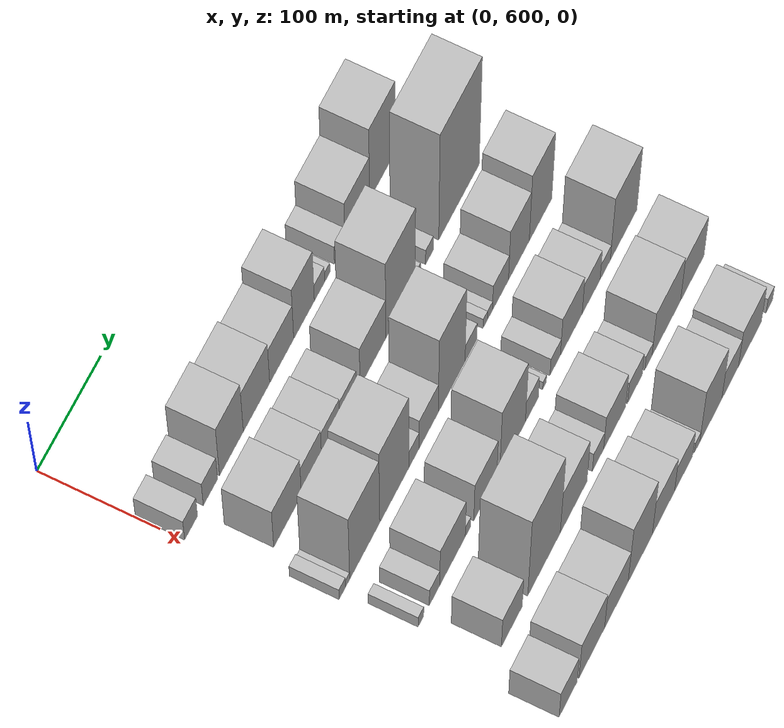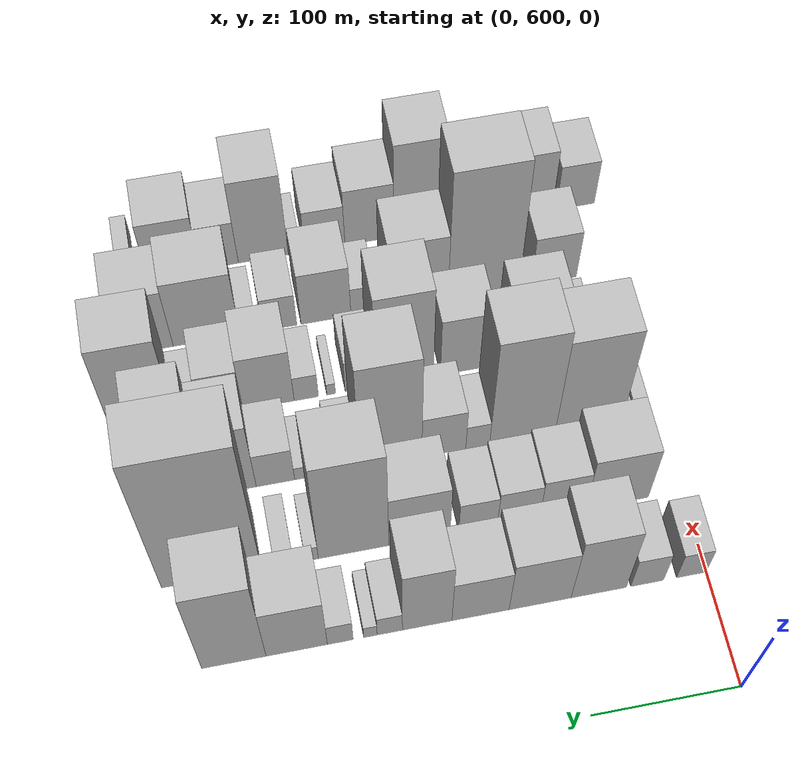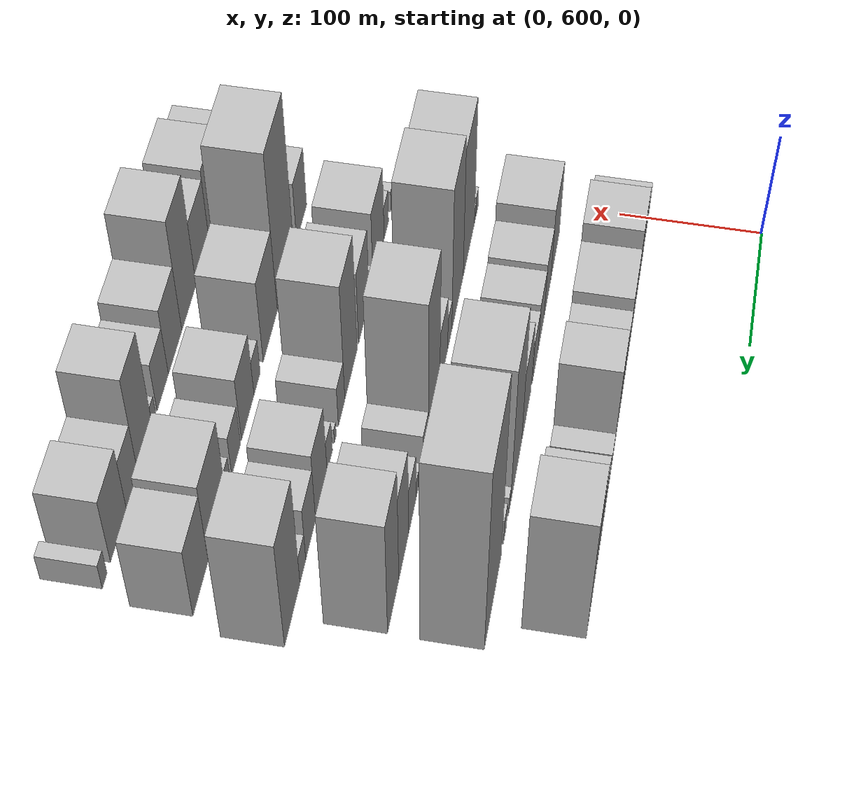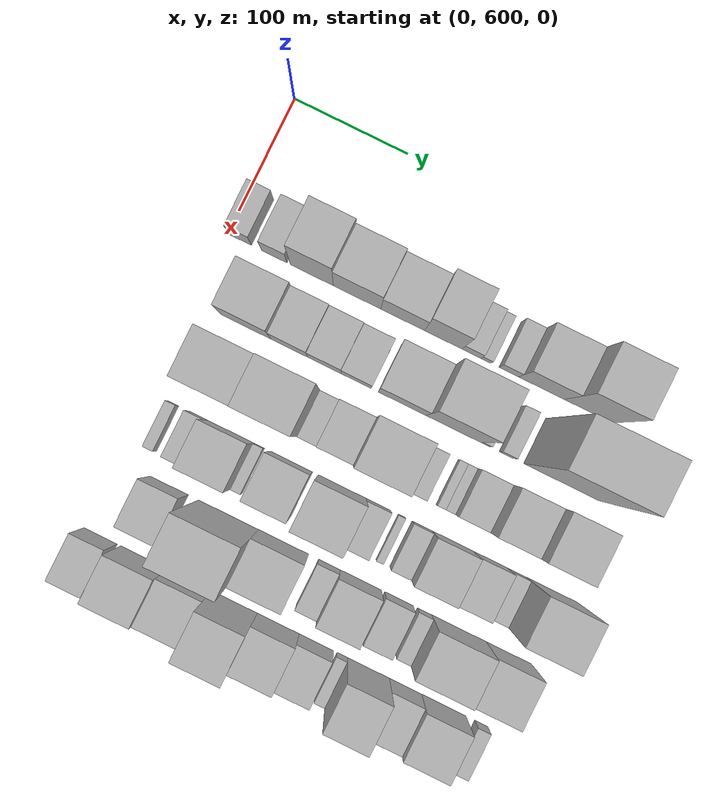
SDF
<sdf version="1.6">
 <world name="default">
  <model name="building_43">
   <static>1</static>
   <pose>100.0000 610.7776 0 0.000000 0.000000 0.000000</pose>
   <link name="link">
    <pose>0 0 19.50 0 0 0</pose>
    <collision name="collision"><geometry><box><size>40.0000 20.3813 39.0000</size></box></geometry></collision>
    <visual name="visual">
     <cast_shadows>0</cast_shadows>
     <geometry><box><size>40.0000 20.3813 39.0000</size></box></geometry>
     <material>
      <script>
       <uri>model://HANNAS_wall/materials/scripts</uri>
       <uri>model://HANNAS_wall/materials/textures</uri>
       <name>vrc/HANNAS_wall</name>
      </script>
     </material>
    </visual>
   </link>
  </model>
  <model name="building_44">
   <static>1</static>
   <pose>100.0000 641.2675 0 0.000000 0.000000 0.000000</pose>
   <link name="link">
    <pose>0 0 22.50 0 0 0</pose>
    <collision name="collision"><geometry><box><size>40.0000 22.5986 45.0000</size></box></geometry></collision>
    <visual name="visual">
     <cast_shadows>0</cast_shadows>
     <geometry><box><size>40.0000 22.5986 45.0000</size></box></geometry>
     <material>
      <script>
       <uri>model://HANNAS_wall/materials/scripts</uri>
       <uri>model://HANNAS_wall/materials/textures</uri>
       <name>vrc/HANNAS_wall</name>
      </script>
     </material>
    </visual>
   </link>
  </model>
  <model name="building_45">
   <static>1</static>
   <pose>100.0000 674.5001 0 0.000000 0.000000 0.000000</pose>
   <link name="link">
    <pose>0 0 48.00 0 0 0</pose>
    <collision name="collision"><geometry><box><size>40.0000 37.8667 96.0000</size></box></geometry></collision>
    <visual name="visual">
     <cast_shadows>0</cast_shadows>
     <geometry><box><size>40.0000 37.8667 96.0000</size></box></geometry>
     <material>
      <script>
       <uri>model://HANNAS_wall/materials/scripts</uri>
       <uri>model://HANNAS_wall/materials/textures</uri>
       <name>vrc/HANNAS_wall</name>
      </script>
     </material>
    </visual>
   </link>
  </model>
  <model name="building_46">
   <static>1</static>
   <pose>100.0000 714.5114 0 0.000000 0.000000 0.000000</pose>
   <link name="link">
    <pose>0 0 39.00 0 0 0</pose>
    <collision name="collision"><geometry><box><size>40.0000 42.1558 78.0000</size></box></geometry></collision>
    <visual name="visual">
     <cast_shadows>0</cast_shadows>
     <geometry><box><size>40.0000 42.1558 78.0000</size></box></geometry>
     <material>
      <script>
       <uri>model://HANNAS_wall/materials/scripts</uri>
       <uri>model://HANNAS_wall/materials/textures</uri>
       <name>vrc/HANNAS_wall</name>
      </script>
     </material>
    </visual>
   </link>
  </model>
  <model name="building_47">
   <static>1</static>
   <pose>100.0000 754.8918 0 0.000000 0.000000 0.000000</pose>
   <link name="link">
    <pose>0 0 33.00 0 0 0</pose>
    <collision name="collision"><geometry><box><size>40.0000 38.6050 66.0000</size></box></geometry></collision>
    <visual name="visual">
     <cast_shadows>0</cast_shadows>
     <geometry><box><size>40.0000 38.6050 66.0000</size></box></geometry>
     <material>
      <script>
       <uri>model://HANNAS_wall/materials/scripts</uri>
       <uri>model://HANNAS_wall/materials/textures</uri>
       <name>vrc/HANNAS_wall</name>
      </script>
     </material>
    </visual>
   </link>
  </model>
  <model name="building_48">
   <static>1</static>
   <pose>100.0000 790.8242 0 0.000000 0.000000 0.000000</pose>
   <link name="link">
    <pose>0 0 48.00 0 0 0</pose>
    <collision name="collision"><geometry><box><size>40.0000 33.2598 96.0000</size></box></geometry></collision>
    <visual name="visual">
     <cast_shadows>0</cast_shadows>
     <geometry><box><size>40.0000 33.2598 96.0000</size></box></geometry>
     <material>
      <script>
       <uri>model://HANNAS_wall/materials/scripts</uri>
       <uri>model://HANNAS_wall/materials/textures</uri>
       <name>vrc/HANNAS_wall</name>
      </script>
     </material>
    </visual>
   </link>
  </model>
  <model name="building_49">
   <static>1</static>
   <pose>100.0000 815.8754 0 0.000000 0.000000 0.000000</pose>
   <link name="link">
    <pose>0 0 15.00 0 0 0</pose>
    <collision name="collision"><geometry><box><size>40.0000 16.8427 30.0000</size></box></geometry></collision>
    <visual name="visual">
     <cast_shadows>0</cast_shadows>
     <geometry><box><size>40.0000 16.8427 30.0000</size></box></geometry>
     <material>
      <script>
       <uri>model://HANNAS_wall/materials/scripts</uri>
       <uri>model://HANNAS_wall/materials/textures</uri>
       <name>vrc/HANNAS_wall</name>
      </script>
     </material>
    </visual>
   </link>
  </model>
  <model name="building_50">
   <static>1</static>
   <pose>100.0000 828.7711 0 0.000000 0.000000 0.000000</pose>
   <link name="link">
    <pose>0 0 9.00 0 0 0</pose>
    <collision name="collision"><geometry><box><size>40.0000 8.9487 18.0000</size></box></geometry></collision>
    <visual name="visual">
     <cast_shadows>0</cast_shadows>
     <geometry><box><size>40.0000 8.9487 18.0000</size></box></geometry>
     <material>
      <script>
       <uri>model://HANNAS_wall/materials/scripts</uri>
       <uri>model://HANNAS_wall/materials/textures</uri>
       <name>vrc/HANNAS_wall</name>
      </script>
     </material>
    </visual>
   </link>
  </model>
  <model name="building_51">
   <static>1</static>
   <pose>100.0000 848.8117 0 0.000000 0.000000 0.000000</pose>
   <link name="link">
    <pose>0 0 16.50 0 0 0</pose>
    <collision name="collision"><geometry><box><size>40.0000 17.1325 33.0000</size></box></geometry></collision>
    <visual name="visual">
     <cast_shadows>0</cast_shadows>
     <geometry><box><size>40.0000 17.1325 33.0000</size></box></geometry>
     <material>
      <script>
       <uri>model://HANNAS_wall/materials/scripts</uri>
       <uri>model://HANNAS_wall/materials/textures</uri>
       <name>vrc/HANNAS_wall</name>
      </script>
     </material>
    </visual>
   </link>
  </model>
  <model name="building_52">
   <static>1</static>
   <pose>100.0000 877.6460 0 0.000000 0.000000 0.000000</pose>
   <link name="link">
    <pose>0 0 39.00 0 0 0</pose>
    <collision name="collision"><geometry><box><size>40.0000 40.5361 78.0000</size></box></geometry></collision>
    <visual name="visual">
     <cast_shadows>0</cast_shadows>
     <geometry><box><size>40.0000 40.5361 78.0000</size></box></geometry>
     <material>
      <script>
       <uri>model://HANNAS_wall/materials/scripts</uri>
       <uri>model://HANNAS_wall/materials/textures</uri>
       <name>vrc/HANNAS_wall</name>
      </script>
     </material>
    </visual>
   </link>
  </model>
  <model name="building_53">
   <static>1</static>
   <pose>100.0000 919.0583 0 0.000000 0.000000 0.000000</pose>
   <link name="link">
    <pose>0 0 64.50 0 0 0</pose>
    <collision name="collision"><geometry><box><size>40.0000 42.2884 129.0000</size></box></geometry></collision>
    <visual name="visual">
     <cast_shadows>0</cast_shadows>
     <geometry><box><size>40.0000 42.2884 129.0000</size></box></geometry>
     <material>
      <script>
       <uri>model://HANNAS_wall/materials/scripts</uri>
       <uri>model://HANNAS_wall/materials/textures</uri>
       <name>vrc/HANNAS_wall</name>
      </script>
     </material>
    </visual>
   </link>
  </model>
  <model name="building_103">
   <static>1</static>
   <pose>160.0000 646.2198 0 0.000000 0.000000 0.000000</pose>
   <link name="link">
    <pose>0 0 37.50 0 0 0</pose>
    <collision name="collision"><geometry><box><size>40.0000 44.0148 75.0000</size></box></geometry></collision>
    <visual name="visual">
     <cast_shadows>0</cast_shadows>
     <geometry><box><size>40.0000 44.0148 75.0000</size></box></geometry>
     <material>
      <script>
       <uri>model://HANNAS_wall/materials/scripts</uri>
       <uri>model://HANNAS_wall/materials/textures</uri>
       <name>vrc/HANNAS_wall</name>
      </script>
     </material>
    </visual>
   </link>
  </model>
  <model name="building_104">
   <static>1</static>
   <pose>160.0000 684.3957 0 0.000000 0.000000 0.000000</pose>
   <link name="link">
    <pose>0 0 28.50 0 0 0</pose>
    <collision name="collision"><geometry><box><size>40.0000 32.3370 57.0000</size></box></geometry></collision>
    <visual name="visual">
     <cast_shadows>0</cast_shadows>
     <geometry><box><size>40.0000 32.3370 57.0000</size></box></geometry>
     <material>
      <script>
       <uri>model://HANNAS_wall/materials/scripts</uri>
       <uri>model://HANNAS_wall/materials/textures</uri>
       <name>vrc/HANNAS_wall</name>
      </script>
     </material>
    </visual>
   </link>
  </model>
  <model name="building_105">
   <static>1</static>
   <pose>160.0000 715.2752 0 0.000000 0.000000 0.000000</pose>
   <link name="link">
    <pose>0 0 25.50 0 0 0</pose>
    <collision name="collision"><geometry><box><size>40.0000 29.4220 51.0000</size></box></geometry></collision>
    <visual name="visual">
     <cast_shadows>0</cast_shadows>
     <geometry><box><size>40.0000 29.4220 51.0000</size></box></geometry>
     <material>
      <script>
       <uri>model://HANNAS_wall/materials/scripts</uri>
       <uri>model://HANNAS_wall/materials/textures</uri>
       <name>vrc/HANNAS_wall</name>
      </script>
     </material>
    </visual>
   </link>
  </model>
  <model name="building_106">
   <static>1</static>
   <pose>160.0000 743.3657 0 0.000000 0.000000 0.000000</pose>
   <link name="link">
    <pose>0 0 22.50 0 0 0</pose>
    <collision name="collision"><geometry><box><size>40.0000 26.7590 45.0000</size></box></geometry></collision>
    <visual name="visual">
     <cast_shadows>0</cast_shadows>
     <geometry><box><size>40.0000 26.7590 45.0000</size></box></geometry>
     <material>
      <script>
       <uri>model://HANNAS_wall/materials/scripts</uri>
       <uri>model://HANNAS_wall/materials/textures</uri>
       <name>vrc/HANNAS_wall</name>
      </script>
     </material>
    </visual>
   </link>
  </model>
  <model name="building_107">
   <static>1</static>
   <pose>160.0000 783.7602 0 0.000000 0.000000 0.000000</pose>
   <link name="link">
    <pose>0 0 37.50 0 0 0</pose>
    <collision name="collision"><geometry><box><size>40.0000 42.0301 75.0000</size></box></geometry></collision>
    <visual name="visual">
     <cast_shadows>0</cast_shadows>
     <geometry><box><size>40.0000 42.0301 75.0000</size></box></geometry>
     <material>
      <script>
       <uri>model://HANNAS_wall/materials/scripts</uri>
       <uri>model://HANNAS_wall/materials/textures</uri>
       <name>vrc/HANNAS_wall</name>
      </script>
     </material>
    </visual>
   </link>
  </model>
  <model name="building_108">
   <static>1</static>
   <pose>160.0000 828.8550 0 0.000000 0.000000 0.000000</pose>
   <link name="link">
    <pose>0 0 72.00 0 0 0</pose>
    <collision name="collision"><geometry><box><size>40.0000 48.1595 144.0000</size></box></geometry></collision>
    <visual name="visual">
     <cast_shadows>0</cast_shadows>
     <geometry><box><size>40.0000 48.1595 144.0000</size></box></geometry>
     <material>
      <script>
       <uri>model://HANNAS_wall/materials/scripts</uri>
       <uri>model://HANNAS_wall/materials/textures</uri>
       <name>vrc/HANNAS_wall</name>
      </script>
     </material>
    </visual>
   </link>
  </model>
  <model name="building_109">
   <static>1</static>
   <pose>160.0000 857.3793 0 0.000000 0.000000 0.000000</pose>
   <link name="link">
    <pose>0 0 10.50 0 0 0</pose>
    <collision name="collision"><geometry><box><size>40.0000 8.8892 21.0000</size></box></geometry></collision>
    <visual name="visual">
     <cast_shadows>0</cast_shadows>
     <geometry><box><size>40.0000 8.8892 21.0000</size></box></geometry>
     <material>
      <script>
       <uri>model://HANNAS_wall/materials/scripts</uri>
       <uri>model://HANNAS_wall/materials/textures</uri>
       <name>vrc/HANNAS_wall</name>
      </script>
     </material>
    </visual>
   </link>
  </model>
  <model name="building_110">
   <static>1</static>
   <pose>160.0000 876.1584 0 0.000000 0.000000 0.000000</pose>
   <link name="link">
    <pose>0 0 13.50 0 0 0</pose>
    <collision name="collision"><geometry><box><size>40.0000 12.6690 27.0000</size></box></geometry></collision>
    <visual name="visual">
     <cast_shadows>0</cast_shadows>
     <geometry><box><size>40.0000 12.6690 27.0000</size></box></geometry>
     <material>
      <script>
       <uri>model://HANNAS_wall/materials/scripts</uri>
       <uri>model://HANNAS_wall/materials/textures</uri>
       <name>vrc/HANNAS_wall</name>
      </script>
     </material>
    </visual>
   </link>
  </model>
  <model name="building_111">
   <static>1</static>
   <pose>160.0000 925.1419 0 0.000000 0.000000 0.000000</pose>
   <link name="link">
    <pose>0 0 97.50 0 0 0</pose>
    <collision name="collision"><geometry><box><size>40.0000 67.2980 195.0000</size></box></geometry></collision>
    <visual name="visual">
     <cast_shadows>0</cast_shadows>
     <geometry><box><size>40.0000 67.2980 195.0000</size></box></geometry>
     <material>
      <script>
       <uri>model://HANNAS_wall/materials/scripts</uri>
       <uri>model://HANNAS_wall/materials/textures</uri>
       <name>vrc/HANNAS_wall</name>
      </script>
     </material>
    </visual>
   </link>
  </model>
  <model name="building_155">
   <static>1</static>
   <pose>220.0000 615.0858 0 0.000000 0.000000 0.000000</pose>
   <link name="link">
    <pose>0 0 10.50 0 0 0</pose>
    <collision name="collision"><geometry><box><size>40.0000 10.4318 21.0000</size></box></geometry></collision>
    <visual name="visual">
     <cast_shadows>0</cast_shadows>
     <geometry><box><size>40.0000 10.4318 21.0000</size></box></geometry>
     <material>
      <script>
       <uri>model://HANNAS_wall/materials/scripts</uri>
       <uri>model://HANNAS_wall/materials/textures</uri>
       <name>vrc/HANNAS_wall</name>
      </script>
     </material>
    </visual>
   </link>
  </model>
  <model name="building_156">
   <static>1</static>
   <pose>220.0000 623.5421 0 0.000000 0.000000 0.000000</pose>
   <link name="link">
    <pose>0 0 7.50 0 0 0</pose>
    <collision name="collision"><geometry><box><size>40.0000 6.4809 15.0000</size></box></geometry></collision>
    <visual name="visual">
     <cast_shadows>0</cast_shadows>
     <geometry><box><size>40.0000 6.4809 15.0000</size></box></geometry>
     <material>
      <script>
       <uri>model://HANNAS_wall/materials/scripts</uri>
       <uri>model://HANNAS_wall/materials/textures</uri>
       <name>vrc/HANNAS_wall</name>
      </script>
     </material>
    </visual>
   </link>
  </model>
  <model name="building_157">
   <static>1</static>
   <pose>220.0000 650.8778 0 0.000000 0.000000 0.000000</pose>
   <link name="link">
    <pose>0 0 64.50 0 0 0</pose>
    <collision name="collision"><geometry><box><size>40.0000 48.1904 129.0000</size></box></geometry></collision>
    <visual name="visual">
     <cast_shadows>0</cast_shadows>
     <geometry><box><size>40.0000 48.1904 129.0000</size></box></geometry>
     <material>
      <script>
       <uri>model://HANNAS_wall/materials/scripts</uri>
       <uri>model://HANNAS_wall/materials/textures</uri>
       <name>vrc/HANNAS_wall</name>
      </script>
     </material>
    </visual>
   </link>
  </model>
  <model name="building_158">
   <static>1</static>
   <pose>220.0000 698.4132 0 0.000000 0.000000 0.000000</pose>
   <link name="link">
    <pose>0 0 72.00 0 0 0</pose>
    <collision name="collision"><geometry><box><size>40.0000 46.8804 144.0000</size></box></geometry></collision>
    <visual name="visual">
     <cast_shadows>0</cast_shadows>
     <geometry><box><size>40.0000 46.8804 144.0000</size></box></geometry>
     <material>
      <script>
       <uri>model://HANNAS_wall/materials/scripts</uri>
       <uri>model://HANNAS_wall/materials/textures</uri>
       <name>vrc/HANNAS_wall</name>
      </script>
     </material>
    </visual>
   </link>
  </model>
  <model name="building_159">
   <static>1</static>
   <pose>220.0000 730.3492 0 0.000000 0.000000 0.000000</pose>
   <link name="link">
    <pose>0 0 16.50 0 0 0</pose>
    <collision name="collision"><geometry><box><size>40.0000 16.9916 33.0000</size></box></geometry></collision>
    <visual name="visual">
     <cast_shadows>0</cast_shadows>
     <geometry><box><size>40.0000 16.9916 33.0000</size></box></geometry>
     <material>
      <script>
       <uri>model://HANNAS_wall/materials/scripts</uri>
       <uri>model://HANNAS_wall/materials/textures</uri>
       <name>vrc/HANNAS_wall</name>
      </script>
     </material>
    </visual>
   </link>
  </model>
  <model name="building_160">
   <static>1</static>
   <pose>220.0000 754.4085 0 0.000000 0.000000 0.000000</pose>
   <link name="link">
    <pose>0 0 28.50 0 0 0</pose>
    <collision name="collision"><geometry><box><size>40.0000 31.1271 57.0000</size></box></geometry></collision>
    <visual name="visual">
     <cast_shadows>0</cast_shadows>
     <geometry><box><size>40.0000 31.1271 57.0000</size></box></geometry>
     <material>
      <script>
       <uri>model://HANNAS_wall/materials/scripts</uri>
       <uri>model://HANNAS_wall/materials/textures</uri>
       <name>vrc/HANNAS_wall</name>
      </script>
     </material>
    </visual>
   </link>
  </model>
  <model name="building_161">
   <static>1</static>
   <pose>220.0000 791.8838 0 0.000000 0.000000 0.000000</pose>
   <link name="link">
    <pose>0 0 72.00 0 0 0</pose>
    <collision name="collision"><geometry><box><size>40.0000 43.8234 144.0000</size></box></geometry></collision>
    <visual name="visual">
     <cast_shadows>0</cast_shadows>
     <geometry><box><size>40.0000 43.8234 144.0000</size></box></geometry>
     <material>
      <script>
       <uri>model://HANNAS_wall/materials/scripts</uri>
       <uri>model://HANNAS_wall/materials/textures</uri>
       <name>vrc/HANNAS_wall</name>
      </script>
     </material>
    </visual>
   </link>
  </model>
  <model name="building_162">
   <static>1</static>
   <pose>220.0000 823.6153 0 0.000000 0.000000 0.000000</pose>
   <link name="link">
    <pose>0 0 16.50 0 0 0</pose>
    <collision name="collision"><geometry><box><size>40.0000 19.6396 33.0000</size></box></geometry></collision>
    <visual name="visual">
     <cast_shadows>0</cast_shadows>
     <geometry><box><size>40.0000 19.6396 33.0000</size></box></geometry>
     <material>
      <script>
       <uri>model://HANNAS_wall/materials/scripts</uri>
       <uri>model://HANNAS_wall/materials/textures</uri>
       <name>vrc/HANNAS_wall</name>
      </script>
     </material>
    </visual>
   </link>
  </model>
  <model name="building_163">
   <static>1</static>
   <pose>220.0000 847.0999 0 0.000000 0.000000 0.000000</pose>
   <link name="link">
    <pose>0 0 9.00 0 0 0</pose>
    <collision name="collision"><geometry><box><size>40.0000 7.3296 18.0000</size></box></geometry></collision>
    <visual name="visual">
     <cast_shadows>0</cast_shadows>
     <geometry><box><size>40.0000 7.3296 18.0000</size></box></geometry>
     <material>
      <script>
       <uri>model://HANNAS_wall/materials/scripts</uri>
       <uri>model://HANNAS_wall/materials/textures</uri>
       <name>vrc/HANNAS_wall</name>
      </script>
     </material>
    </visual>
   </link>
  </model>
  <model name="building_164">
   <static>1</static>
   <pose>220.0000 854.9208 0 0.000000 0.000000 0.000000</pose>
   <link name="link">
    <pose>0 0 9.00 0 0 0</pose>
    <collision name="collision"><geometry><box><size>40.0000 8.3123 18.0000</size></box></geometry></collision>
    <visual name="visual">
     <cast_shadows>0</cast_shadows>
     <geometry><box><size>40.0000 8.3123 18.0000</size></box></geometry>
     <material>
      <script>
       <uri>model://HANNAS_wall/materials/scripts</uri>
       <uri>model://HANNAS_wall/materials/textures</uri>
       <name>vrc/HANNAS_wall</name>
      </script>
     </material>
    </visual>
   </link>
  </model>
  <model name="building_165">
   <static>1</static>
   <pose>220.0000 872.4205 0 0.000000 0.000000 0.000000</pose>
   <link name="link">
    <pose>0 0 24.00 0 0 0</pose>
    <collision name="collision"><geometry><box><size>40.0000 26.6870 48.0000</size></box></geometry></collision>
    <visual name="visual">
     <cast_shadows>0</cast_shadows>
     <geometry><box><size>40.0000 26.6870 48.0000</size></box></geometry>
     <material>
      <script>
       <uri>model://HANNAS_wall/materials/scripts</uri>
       <uri>model://HANNAS_wall/materials/textures</uri>
       <name>vrc/HANNAS_wall</name>
      </script>
     </material>
    </visual>
   </link>
  </model>
  <model name="building_166">
   <static>1</static>
   <pose>220.0000 903.0602 0 0.000000 0.000000 0.000000</pose>
   <link name="link">
    <pose>0 0 46.50 0 0 0</pose>
    <collision name="collision"><geometry><box><size>40.0000 34.5925 93.0000</size></box></geometry></collision>
    <visual name="visual">
     <cast_shadows>0</cast_shadows>
     <geometry><box><size>40.0000 34.5925 93.0000</size></box></geometry>
     <material>
      <script>
       <uri>model://HANNAS_wall/materials/scripts</uri>
       <uri>model://HANNAS_wall/materials/textures</uri>
       <name>vrc/HANNAS_wall</name>
      </script>
     </material>
    </visual>
   </link>
  </model>
  <model name="building_167">
   <static>1</static>
   <pose>220.0000 939.2736 0 0.000000 0.000000 0.000000</pose>
   <link name="link">
    <pose>0 0 61.50 0 0 0</pose>
    <collision name="collision"><geometry><box><size>40.0000 37.8342 123.0000</size></box></geometry></collision>
    <visual name="visual">
     <cast_shadows>0</cast_shadows>
     <geometry><box><size>40.0000 37.8342 123.0000</size></box></geometry>
     <material>
      <script>
       <uri>model://HANNAS_wall/materials/scripts</uri>
       <uri>model://HANNAS_wall/materials/textures</uri>
       <name>vrc/HANNAS_wall</name>
      </script>
     </material>
    </visual>
   </link>
  </model>
  <model name="building_212">
   <static>1</static>
   <pose>280.0000 621.1608 0 0.000000 0.000000 0.000000</pose>
   <link name="link">
    <pose>0 0 10.50 0 0 0</pose>
    <collision name="collision"><geometry><box><size>40.0000 9.0547 21.0000</size></box></geometry></collision>
    <visual name="visual">
     <cast_shadows>0</cast_shadows>
     <geometry><box><size>40.0000 9.0547 21.0000</size></box></geometry>
     <material>
      <script>
       <uri>model://HANNAS_wall/materials/scripts</uri>
       <uri>model://HANNAS_wall/materials/textures</uri>
       <name>vrc/HANNAS_wall</name>
      </script>
     </material>
    </visual>
   </link>
  </model>
  <model name="building_213">
   <static>1</static>
   <pose>280.0000 643.0673 0 0.000000 0.000000 0.000000</pose>
   <link name="link">
    <pose>0 0 16.50 0 0 0</pose>
    <collision name="collision"><geometry><box><size>40.0000 16.7583 33.0000</size></box></geometry></collision>
    <visual name="visual">
     <cast_shadows>0</cast_shadows>
     <geometry><box><size>40.0000 16.7583 33.0000</size></box></geometry>
     <material>
      <script>
       <uri>model://HANNAS_wall/materials/scripts</uri>
       <uri>model://HANNAS_wall/materials/textures</uri>
       <name>vrc/HANNAS_wall</name>
      </script>
     </material>
    </visual>
   </link>
  </model>
  <model name="building_214">
   <static>1</static>
   <pose>280.0000 672.1546 0 0.000000 0.000000 0.000000</pose>
   <link name="link">
    <pose>0 0 37.50 0 0 0</pose>
    <collision name="collision"><geometry><box><size>40.0000 41.4164 75.0000</size></box></geometry></collision>
    <visual name="visual">
     <cast_shadows>0</cast_shadows>
     <geometry><box><size>40.0000 41.4164 75.0000</size></box></geometry>
     <material>
      <script>
       <uri>model://HANNAS_wall/materials/scripts</uri>
       <uri>model://HANNAS_wall/materials/textures</uri>
       <name>vrc/HANNAS_wall</name>
      </script>
     </material>
    </visual>
   </link>
  </model>
  <model name="building_215">
   <static>1</static>
   <pose>280.0000 697.2814 0 0.000000 0.000000 0.000000</pose>
   <link name="link">
    <pose>0 0 10.50 0 0 0</pose>
    <collision name="collision"><geometry><box><size>40.0000 8.8372 21.0000</size></box></geometry></collision>
    <visual name="visual">
     <cast_shadows>0</cast_shadows>
     <geometry><box><size>40.0000 8.8372 21.0000</size></box></geometry>
     <material>
      <script>
       <uri>model://HANNAS_wall/materials/scripts</uri>
       <uri>model://HANNAS_wall/materials/textures</uri>
       <name>vrc/HANNAS_wall</name>
      </script>
     </material>
    </visual>
   </link>
  </model>
  <model name="building_216">
   <static>1</static>
   <pose>280.0000 725.4891 0 0.000000 0.000000 0.000000</pose>
   <link name="link">
    <pose>0 0 37.50 0 0 0</pose>
    <collision name="collision"><geometry><box><size>40.0000 37.5783 75.0000</size></box></geometry></collision>
    <visual name="visual">
     <cast_shadows>0</cast_shadows>
     <geometry><box><size>40.0000 37.5783 75.0000</size></box></geometry>
     <material>
      <script>
       <uri>model://HANNAS_wall/materials/scripts</uri>
       <uri>model://HANNAS_wall/materials/textures</uri>
       <name>vrc/HANNAS_wall</name>
      </script>
     </material>
    </visual>
   </link>
  </model>
  <model name="building_217">
   <static>1</static>
   <pose>280.0000 770.2881 0 0.000000 0.000000 0.000000</pose>
   <link name="link">
    <pose>0 0 60.00 0 0 0</pose>
    <collision name="collision"><geometry><box><size>40.0000 42.0197 120.0000</size></box></geometry></collision>
    <visual name="visual">
     <cast_shadows>0</cast_shadows>
     <geometry><box><size>40.0000 42.0197 120.0000</size></box></geometry>
     <material>
      <script>
       <uri>model://HANNAS_wall/materials/scripts</uri>
       <uri>model://HANNAS_wall/materials/textures</uri>
       <name>vrc/HANNAS_wall</name>
      </script>
     </material>
    </visual>
   </link>
  </model>
  <model name="building_218">
   <static>1</static>
   <pose>280.0000 802.1044 0 0.000000 0.000000 0.000000</pose>
   <link name="link">
    <pose>0 0 21.00 0 0 0</pose>
    <collision name="collision"><geometry><box><size>40.0000 21.6130 42.0000</size></box></geometry></collision>
    <visual name="visual">
     <cast_shadows>0</cast_shadows>
     <geometry><box><size>40.0000 21.6130 42.0000</size></box></geometry>
     <material>
      <script>
       <uri>model://HANNAS_wall/materials/scripts</uri>
       <uri>model://HANNAS_wall/materials/textures</uri>
       <name>vrc/HANNAS_wall</name>
      </script>
     </material>
    </visual>
   </link>
  </model>
  <model name="building_219">
   <static>1</static>
   <pose>280.0000 823.0265 0 0.000000 0.000000 0.000000</pose>
   <link name="link">
    <pose>0 0 7.50 0 0 0</pose>
    <collision name="collision"><geometry><box><size>40.0000 6.2311 15.0000</size></box></geometry></collision>
    <visual name="visual">
     <cast_shadows>0</cast_shadows>
     <geometry><box><size>40.0000 6.2311 15.0000</size></box></geometry>
     <material>
      <script>
       <uri>model://HANNAS_wall/materials/scripts</uri>
       <uri>model://HANNAS_wall/materials/textures</uri>
       <name>vrc/HANNAS_wall</name>
      </script>
     </material>
    </visual>
   </link>
  </model>
  <model name="building_220">
   <static>1</static>
   <pose>280.0000 840.8088 0 0.000000 0.000000 0.000000</pose>
   <link name="link">
    <pose>0 0 16.50 0 0 0</pose>
    <collision name="collision"><geometry><box><size>40.0000 17.3336 33.0000</size></box></geometry></collision>
    <visual name="visual">
     <cast_shadows>0</cast_shadows>
     <geometry><box><size>40.0000 17.3336 33.0000</size></box></geometry>
     <material>
      <script>
       <uri>model://HANNAS_wall/materials/scripts</uri>
       <uri>model://HANNAS_wall/materials/textures</uri>
       <name>vrc/HANNAS_wall</name>
      </script>
     </material>
    </visual>
   </link>
  </model>
  <model name="building_221">
   <static>1</static>
   <pose>280.0000 867.6970 0 0.000000 0.000000 0.000000</pose>
   <link name="link">
    <pose>0 0 36.00 0 0 0</pose>
    <collision name="collision"><geometry><box><size>40.0000 36.4427 72.0000</size></box></geometry></collision>
    <visual name="visual">
     <cast_shadows>0</cast_shadows>
     <geometry><box><size>40.0000 36.4427 72.0000</size></box></geometry>
     <material>
      <script>
       <uri>model://HANNAS_wall/materials/scripts</uri>
       <uri>model://HANNAS_wall/materials/textures</uri>
       <name>vrc/HANNAS_wall</name>
      </script>
     </material>
    </visual>
   </link>
  </model>
  <model name="building_222">
   <static>1</static>
   <pose>280.0000 900.8732 0 0.000000 0.000000 0.000000</pose>
   <link name="link">
    <pose>0 0 28.50 0 0 0</pose>
    <collision name="collision"><geometry><box><size>40.0000 29.9098 57.0000</size></box></geometry></collision>
    <visual name="visual">
     <cast_shadows>0</cast_shadows>
     <geometry><box><size>40.0000 29.9098 57.0000</size></box></geometry>
     <material>
      <script>
       <uri>model://HANNAS_wall/materials/scripts</uri>
       <uri>model://HANNAS_wall/materials/textures</uri>
       <name>vrc/HANNAS_wall</name>
      </script>
     </material>
    </visual>
   </link>
  </model>
  <model name="building_223">
   <static>1</static>
   <pose>280.0000 924.4847 0 0.000000 0.000000 0.000000</pose>
   <link name="link">
    <pose>0 0 15.00 0 0 0</pose>
    <collision name="collision"><geometry><box><size>40.0000 17.3133 30.0000</size></box></geometry></collision>
    <visual name="visual">
     <cast_shadows>0</cast_shadows>
     <geometry><box><size>40.0000 17.3133 30.0000</size></box></geometry>
     <material>
      <script>
       <uri>model://HANNAS_wall/materials/scripts</uri>
       <uri>model://HANNAS_wall/materials/textures</uri>
       <name>vrc/HANNAS_wall</name>
      </script>
     </material>
    </visual>
   </link>
  </model>
  <model name="building_224">
   <static>1</static>
   <pose>280.0000 955.6662 0 0.000000 0.000000 0.000000</pose>
   <link name="link">
    <pose>0 0 58.50 0 0 0</pose>
    <collision name="collision"><geometry><box><size>40.0000 45.0496 117.0000</size></box></geometry></collision>
    <visual name="visual">
     <cast_shadows>0</cast_shadows>
     <geometry><box><size>40.0000 45.0496 117.0000</size></box></geometry>
     <material>
      <script>
       <uri>model://HANNAS_wall/materials/scripts</uri>
       <uri>model://HANNAS_wall/materials/textures</uri>
       <name>vrc/HANNAS_wall</name>
      </script>
     </material>
    </visual>
   </link>
  </model>
  <model name="building_268">
   <static>1</static>
   <pose>340.0000 646.7969 0 0.000000 0.000000 0.000000</pose>
   <link name="link">
    <pose>0 0 30.00 0 0 0</pose>
    <collision name="collision"><geometry><box><size>40.0000 33.8680 60.0000</size></box></geometry></collision>
    <visual name="visual">
     <cast_shadows>0</cast_shadows>
     <geometry><box><size>40.0000 33.8680 60.0000</size></box></geometry>
     <material>
      <script>
       <uri>model://HANNAS_wall/materials/scripts</uri>
       <uri>model://HANNAS_wall/materials/textures</uri>
       <name>vrc/HANNAS_wall</name>
      </script>
     </material>
    </visual>
   </link>
  </model>
  <model name="building_269">
   <static>1</static>
   <pose>340.0000 699.3776 0 0.000000 0.000000 0.000000</pose>
   <link name="link">
    <pose>0 0 79.50 0 0 0</pose>
    <collision name="collision"><geometry><box><size>40.0000 53.2933 159.0000</size></box></geometry></collision>
    <visual name="visual">
     <cast_shadows>0</cast_shadows>
     <geometry><box><size>40.0000 53.2933 159.0000</size></box></geometry>
     <material>
      <script>
       <uri>model://HANNAS_wall/materials/scripts</uri>
       <uri>model://HANNAS_wall/materials/textures</uri>
       <name>vrc/HANNAS_wall</name>
      </script>
     </material>
    </visual>
   </link>
  </model>
  <model name="building_270">
   <static>1</static>
   <pose>340.0000 748.0721 0 0.000000 0.000000 0.000000</pose>
   <link name="link">
    <pose>0 0 42.00 0 0 0</pose>
    <collision name="collision"><geometry><box><size>40.0000 44.0958 84.0000</size></box></geometry></collision>
    <visual name="visual">
     <cast_shadows>0</cast_shadows>
     <geometry><box><size>40.0000 44.0958 84.0000</size></box></geometry>
     <material>
      <script>
       <uri>model://HANNAS_wall/materials/scripts</uri>
       <uri>model://HANNAS_wall/materials/textures</uri>
       <name>vrc/HANNAS_wall</name>
      </script>
     </material>
    </visual>
   </link>
  </model>
  <model name="building_271">
   <static>1</static>
   <pose>340.0000 788.4665 0 0.000000 0.000000 0.000000</pose>
   <link name="link">
    <pose>0 0 18.00 0 0 0</pose>
    <collision name="collision"><geometry><box><size>40.0000 18.6929 36.0000</size></box></geometry></collision>
    <visual name="visual">
     <cast_shadows>0</cast_shadows>
     <geometry><box><size>40.0000 18.6929 36.0000</size></box></geometry>
     <material>
      <script>
       <uri>model://HANNAS_wall/materials/scripts</uri>
       <uri>model://HANNAS_wall/materials/textures</uri>
       <name>vrc/HANNAS_wall</name>
      </script>
     </material>
    </visual>
   </link>
  </model>
  <model name="building_272">
   <static>1</static>
   <pose>340.0000 816.1856 0 0.000000 0.000000 0.000000</pose>
   <link name="link">
    <pose>0 0 33.00 0 0 0</pose>
    <collision name="collision"><geometry><box><size>40.0000 36.7452 66.0000</size></box></geometry></collision>
    <visual name="visual">
     <cast_shadows>0</cast_shadows>
     <geometry><box><size>40.0000 36.7452 66.0000</size></box></geometry>
     <material>
      <script>
       <uri>model://HANNAS_wall/materials/scripts</uri>
       <uri>model://HANNAS_wall/materials/textures</uri>
       <name>vrc/HANNAS_wall</name>
      </script>
     </material>
    </visual>
   </link>
  </model>
  <model name="building_273">
   <static>1</static>
   <pose>340.0000 850.0547 0 0.000000 0.000000 0.000000</pose>
   <link name="link">
    <pose>0 0 21.00 0 0 0</pose>
    <collision name="collision"><geometry><box><size>40.0000 24.9930 42.0000</size></box></geometry></collision>
    <visual name="visual">
     <cast_shadows>0</cast_shadows>
     <geometry><box><size>40.0000 24.9930 42.0000</size></box></geometry>
     <material>
      <script>
       <uri>model://HANNAS_wall/materials/scripts</uri>
       <uri>model://HANNAS_wall/materials/textures</uri>
       <name>vrc/HANNAS_wall</name>
      </script>
     </material>
    </visual>
   </link>
  </model>
  <model name="building_274">
   <static>1</static>
   <pose>340.0000 872.7700 0 0.000000 0.000000 0.000000</pose>
   <link name="link">
    <pose>0 0 13.50 0 0 0</pose>
    <collision name="collision"><geometry><box><size>40.0000 12.4375 27.0000</size></box></geometry></collision>
    <visual name="visual">
     <cast_shadows>0</cast_shadows>
     <geometry><box><size>40.0000 12.4375 27.0000</size></box></geometry>
     <material>
      <script>
       <uri>model://HANNAS_wall/materials/scripts</uri>
       <uri>model://HANNAS_wall/materials/textures</uri>
       <name>vrc/HANNAS_wall</name>
      </script>
     </material>
    </visual>
   </link>
  </model>
  <model name="building_275">
   <static>1</static>
   <pose>340.0000 903.1491 0 0.000000 0.000000 0.000000</pose>
   <link name="link">
    <pose>0 0 42.00 0 0 0</pose>
    <collision name="collision"><geometry><box><size>40.0000 48.3208 84.0000</size></box></geometry></collision>
    <visual name="visual">
     <cast_shadows>0</cast_shadows>
     <geometry><box><size>40.0000 48.3208 84.0000</size></box></geometry>
     <material>
      <script>
       <uri>model://HANNAS_wall/materials/scripts</uri>
       <uri>model://HANNAS_wall/materials/textures</uri>
       <name>vrc/HANNAS_wall</name>
      </script>
     </material>
    </visual>
   </link>
  </model>
  <model name="building_276">
   <static>1</static>
   <pose>340.0000 947.2465 0 0.000000 0.000000 0.000000</pose>
   <link name="link">
    <pose>0 0 37.50 0 0 0</pose>
    <collision name="collision"><geometry><box><size>40.0000 39.8740 75.0000</size></box></geometry></collision>
    <visual name="visual">
     <cast_shadows>0</cast_shadows>
     <geometry><box><size>40.0000 39.8740 75.0000</size></box></geometry>
     <material>
      <script>
       <uri>model://HANNAS_wall/materials/scripts</uri>
       <uri>model://HANNAS_wall/materials/textures</uri>
       <name>vrc/HANNAS_wall</name>
      </script>
     </material>
    </visual>
   </link>
  </model>
  <model name="building_317">
   <static>1</static>
   <pose>400.0000 615.6259 0 0.000000 0.000000 0.000000</pose>
   <link name="link">
    <pose>0 0 27.00 0 0 0</pose>
    <collision name="collision"><geometry><box><size>40.0000 29.4258 54.0000</size></box></geometry></collision>
    <visual name="visual">
     <cast_shadows>0</cast_shadows>
     <geometry><box><size>40.0000 29.4258 54.0000</size></box></geometry>
     <material>
      <script>
       <uri>model://HANNAS_wall/materials/scripts</uri>
       <uri>model://HANNAS_wall/materials/textures</uri>
       <name>vrc/HANNAS_wall</name>
      </script>
     </material>
    </visual>
   </link>
  </model>
  <model name="building_318">
   <static>1</static>
   <pose>400.0000 654.2843 0 0.000000 0.000000 0.000000</pose>
   <link name="link">
    <pose>0 0 37.50 0 0 0</pose>
    <collision name="collision"><geometry><box><size>40.0000 41.8910 75.0000</size></box></geometry></collision>
    <visual name="visual">
     <cast_shadows>0</cast_shadows>
     <geometry><box><size>40.0000 41.8910 75.0000</size></box></geometry>
     <material>
      <script>
       <uri>model://HANNAS_wall/materials/scripts</uri>
       <uri>model://HANNAS_wall/materials/textures</uri>
       <name>vrc/HANNAS_wall</name>
      </script>
     </material>
    </visual>
   </link>
  </model>
  <model name="building_319">
   <static>1</static>
   <pose>400.0000 694.6747 0 0.000000 0.000000 0.000000</pose>
   <link name="link">
    <pose>0 0 33.00 0 0 0</pose>
    <collision name="collision"><geometry><box><size>40.0000 38.8898 66.0000</size></box></geometry></collision>
    <visual name="visual">
     <cast_shadows>0</cast_shadows>
     <geometry><box><size>40.0000 38.8898 66.0000</size></box></geometry>
     <material>
      <script>
       <uri>model://HANNAS_wall/materials/scripts</uri>
       <uri>model://HANNAS_wall/materials/textures</uri>
       <name>vrc/HANNAS_wall</name>
      </script>
     </material>
    </visual>
   </link>
  </model>
  <model name="building_320">
   <static>1</static>
   <pose>400.0000 734.2020 0 0.000000 0.000000 0.000000</pose>
   <link name="link">
    <pose>0 0 57.00 0 0 0</pose>
    <collision name="collision"><geometry><box><size>40.0000 40.1647 114.0000</size></box></geometry></collision>
    <visual name="visual">
     <cast_shadows>0</cast_shadows>
     <geometry><box><size>40.0000 40.1647 114.0000</size></box></geometry>
     <material>
      <script>
       <uri>model://HANNAS_wall/materials/scripts</uri>
       <uri>model://HANNAS_wall/materials/textures</uri>
       <name>vrc/HANNAS_wall</name>
      </script>
     </material>
    </visual>
   </link>
  </model>
  <model name="building_321">
   <static>1</static>
   <pose>400.0000 772.8334 0 0.000000 0.000000 0.000000</pose>
   <link name="link">
    <pose>0 0 34.50 0 0 0</pose>
    <collision name="collision"><geometry><box><size>40.0000 37.0980 69.0000</size></box></geometry></collision>
    <visual name="visual">
     <cast_shadows>0</cast_shadows>
     <geometry><box><size>40.0000 37.0980 69.0000</size></box></geometry>
     <material>
      <script>
       <uri>model://HANNAS_wall/materials/scripts</uri>
       <uri>model://HANNAS_wall/materials/textures</uri>
       <name>vrc/HANNAS_wall</name>
      </script>
     </material>
    </visual>
   </link>
  </model>
  <model name="building_322">
   <static>1</static>
   <pose>400.0000 806.5792 0 0.000000 0.000000 0.000000</pose>
   <link name="link">
    <pose>0 0 25.50 0 0 0</pose>
    <collision name="collision"><geometry><box><size>40.0000 30.3938 51.0000</size></box></geometry></collision>
    <visual name="visual">
     <cast_shadows>0</cast_shadows>
     <geometry><box><size>40.0000 30.3938 51.0000</size></box></geometry>
     <material>
      <script>
       <uri>model://HANNAS_wall/materials/scripts</uri>
       <uri>model://HANNAS_wall/materials/textures</uri>
       <name>vrc/HANNAS_wall</name>
      </script>
     </material>
    </visual>
   </link>
  </model>
  <model name="building_323">
   <static>1</static>
   <pose>400.0000 829.3946 0 0.000000 0.000000 0.000000</pose>
   <link name="link">
    <pose>0 0 10.50 0 0 0</pose>
    <collision name="collision"><geometry><box><size>40.0000 9.2369 21.0000</size></box></geometry></collision>
    <visual name="visual">
     <cast_shadows>0</cast_shadows>
     <geometry><box><size>40.0000 9.2369 21.0000</size></box></geometry>
     <material>
      <script>
       <uri>model://HANNAS_wall/materials/scripts</uri>
       <uri>model://HANNAS_wall/materials/textures</uri>
       <name>vrc/HANNAS_wall</name>
      </script>
     </material>
    </visual>
   </link>
  </model>
  <model name="building_324">
   <static>1</static>
   <pose>400.0000 852.5978 0 0.000000 0.000000 0.000000</pose>
   <link name="link">
    <pose>0 0 51.00 0 0 0</pose>
    <collision name="collision"><geometry><box><size>40.0000 37.1695 102.0000</size></box></geometry></collision>
    <visual name="visual">
     <cast_shadows>0</cast_shadows>
     <geometry><box><size>40.0000 37.1695 102.0000</size></box></geometry>
     <material>
      <script>
       <uri>model://HANNAS_wall/materials/scripts</uri>
       <uri>model://HANNAS_wall/materials/textures</uri>
       <name>vrc/HANNAS_wall</name>
      </script>
     </material>
    </visual>
   </link>
  </model>
  <model name="building_325">
   <static>1</static>
   <pose>400.0000 885.4056 0 0.000000 0.000000 0.000000</pose>
   <link name="link">
    <pose>0 0 27.00 0 0 0</pose>
    <collision name="collision"><geometry><box><size>40.0000 28.4459 54.0000</size></box></geometry></collision>
    <visual name="visual">
     <cast_shadows>0</cast_shadows>
     <geometry><box><size>40.0000 28.4459 54.0000</size></box></geometry>
     <material>
      <script>
       <uri>model://HANNAS_wall/materials/scripts</uri>
       <uri>model://HANNAS_wall/materials/textures</uri>
       <name>vrc/HANNAS_wall</name>
      </script>
     </material>
    </visual>
   </link>
  </model>
  <model name="building_326">
   <static>1</static>
   <pose>400.0000 919.1903 0 0.000000 0.000000 0.000000</pose>
   <link name="link">
    <pose>0 0 34.50 0 0 0</pose>
    <collision name="collision"><geometry><box><size>40.0000 39.1235 69.0000</size></box></geometry></collision>
    <visual name="visual">
     <cast_shadows>0</cast_shadows>
     <geometry><box><size>40.0000 39.1235 69.0000</size></box></geometry>
     <material>
      <script>
       <uri>model://HANNAS_wall/materials/scripts</uri>
       <uri>model://HANNAS_wall/materials/textures</uri>
       <name>vrc/HANNAS_wall</name>
      </script>
     </material>
    </visual>
   </link>
  </model>
  <model name="building_327">
   <static>1</static>
   <pose>400.0000 952.4353 0 0.000000 0.000000 0.000000</pose>
   <link name="link">
    <pose>0 0 13.50 0 0 0</pose>
    <collision name="collision"><geometry><box><size>40.0000 11.3666 27.0000</size></box></geometry></collision>
    <visual name="visual">
     <cast_shadows>0</cast_shadows>
     <geometry><box><size>40.0000 11.3666 27.0000</size></box></geometry>
     <material>
      <script>
       <uri>model://HANNAS_wall/materials/scripts</uri>
       <uri>model://HANNAS_wall/materials/textures</uri>
       <name>vrc/HANNAS_wall</name>
      </script>
     </material>
    </visual>
   </link>
  </model>
 </world>
</sdf>
